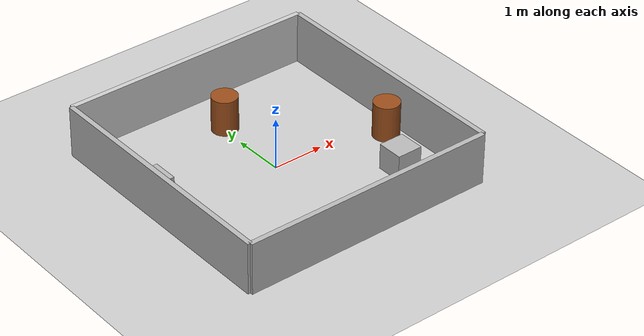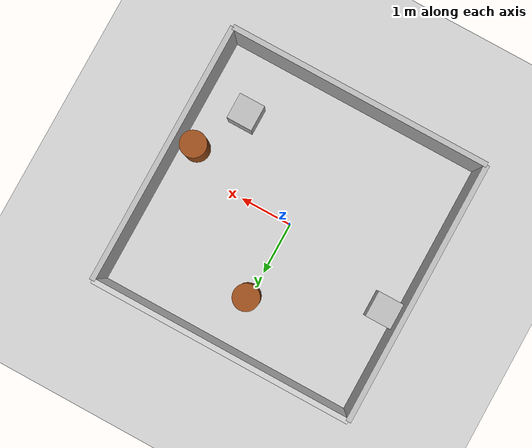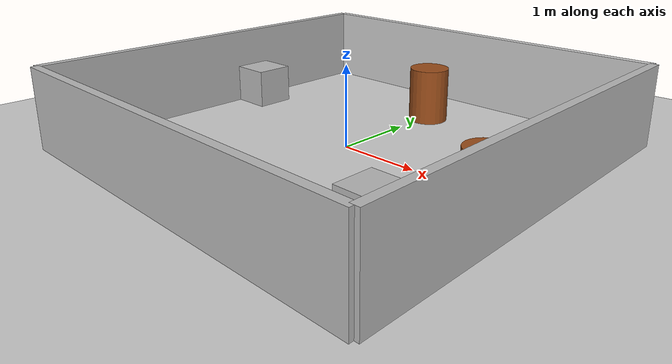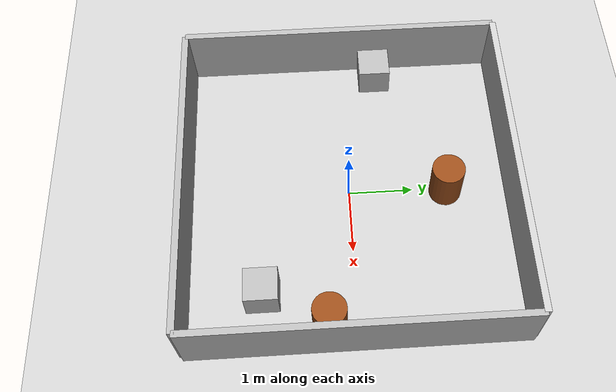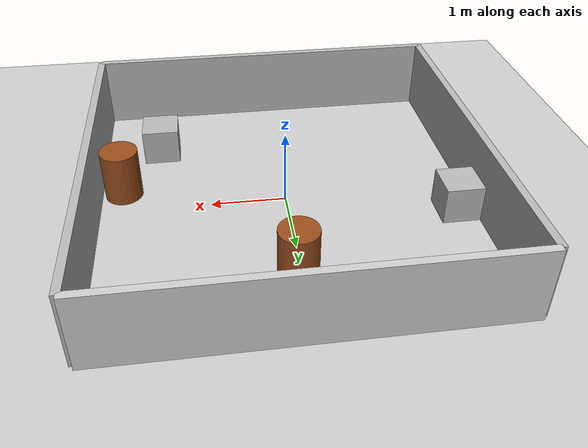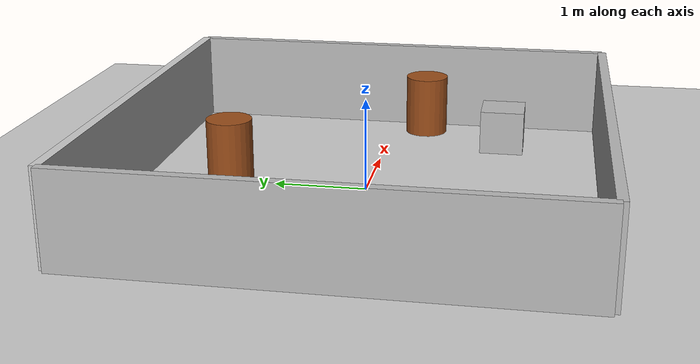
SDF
<sdf version="1.6">
 <world name="default">
  <include><uri>model://sun</uri></include>
  <include><uri>model://ground_plane</uri></include>
  <model name="wall_north">
   <static>true</static>
   <pose>0 2.5 0.5 0 0 0</pose>
   <link name="link">
    <collision name="collision"><geometry><box><size>5 0.1 1</size></box></geometry></collision>
    <visual name="visual">
     <geometry><box><size>5 0.1 1</size></box></geometry>
     <material><ambient>0.8 0.8 0.8 1</ambient><diffuse>0.8 0.8 0.8 1</diffuse></material>
    </visual>
   </link>
  </model>
  <model name="wall_south">
   <static>true</static>
   <pose>0 -2.5 0.5 0 0 0</pose>
   <link name="link">
    <collision name="collision"><geometry><box><size>5 0.1 1</size></box></geometry></collision>
    <visual name="visual"><geometry><box><size>5 0.1 1</size></box></geometry></visual>
   </link>
  </model>
  <model name="wall_east">
   <static>true</static>
   <pose>2.5 0 0.5 0 0 0</pose>
   <link name="link">
    <collision name="collision"><geometry><box><size>0.1 5 1</size></box></geometry></collision>
    <visual name="visual"><geometry><box><size>0.1 5 1</size></box></geometry></visual>
   </link>
  </model>
  <model name="wall_west">
   <static>true</static>
   <pose>-2.5 0 0.5 0 0 0</pose>
   <link name="link">
    <collision name="collision"><geometry><box><size>0.1 5 1</size></box></geometry></collision>
    <visual name="visual"><geometry><box><size>0.1 5 1</size></box></geometry></visual>
   </link>
  </model>
  <model name="box_obstacle_1">
   <static>true</static>
   <pose>-2.200642 0.539028 0.25 0 0 0</pose>
   <link name="link">
    <collision name="collision"><geometry><box><size>0.5 0.5 0.5</size></box></geometry></collision>
    <visual name="visual"><geometry><box><size>0.5 0.5 0.5</size></box></geometry></visual>
   </link>
  </model>
  <model name="box_obstacle_2">
   <static>true</static>
   <pose>1.651777 -1.367956 0.25 0 0 0</pose>
   <link name="link">
    <collision name="collision"><geometry><box><size>0.5 0.5 0.5</size></box></geometry></collision>
    <visual name="visual"><geometry><box><size>0.5 0.5 0.5</size></box></geometry></visual>
   </link>
  </model>
  <model name="cylinder_obstacle_1">
   <static>true</static>
   <pose>2.161544 -0.403086 0.35 0 0 0</pose>
   <link name="link">
    <collision name="collision">
     <geometry><cylinder><radius>0.25</radius><length>0.7</length></cylinder></geometry>
    </collision>
    <visual name="visual">
     <geometry><cylinder><radius>0.25</radius><length>0.7</length></cylinder></geometry>
     <material><ambient>0.6 0.3 0.1 1</ambient><diffuse>0.6 0.3 0.1 1</diffuse></material>
    </visual>
   </link>
  </model>
  <model name="cylinder_obstacle_2">
   <static>true</static>
   <pose>0.049550 1.507285 0.35 0 0 0</pose>
   <link name="link">
    <collision name="collision">
     <geometry><cylinder><radius>0.25</radius><length>0.7</length></cylinder></geometry>
    </collision>
    <visual name="visual">
     <geometry><cylinder><radius>0.25</radius><length>0.7</length></cylinder></geometry>
     <material><ambient>0.6 0.3 0.1 1</ambient><diffuse>0.6 0.3 0.1 1</diffuse></material>
    </visual>
   </link>
  </model>
 </world>
</sdf>
